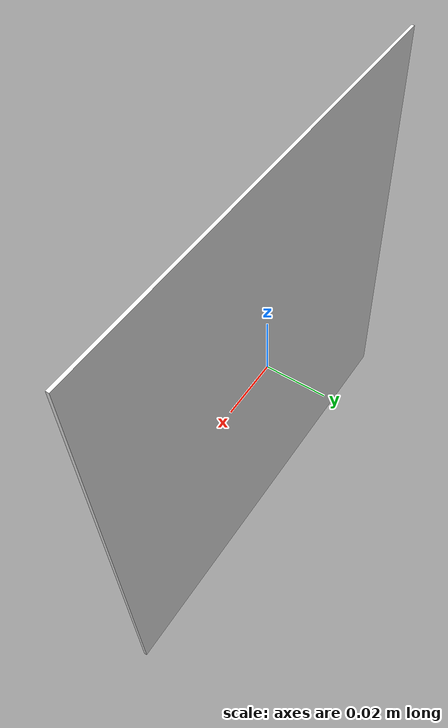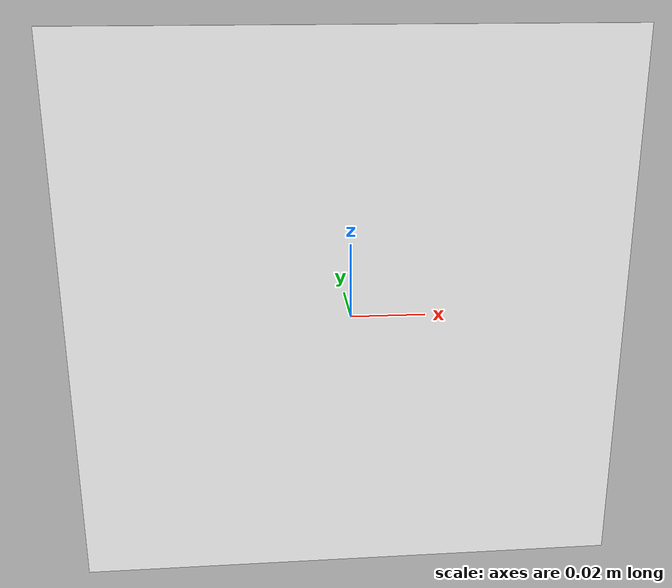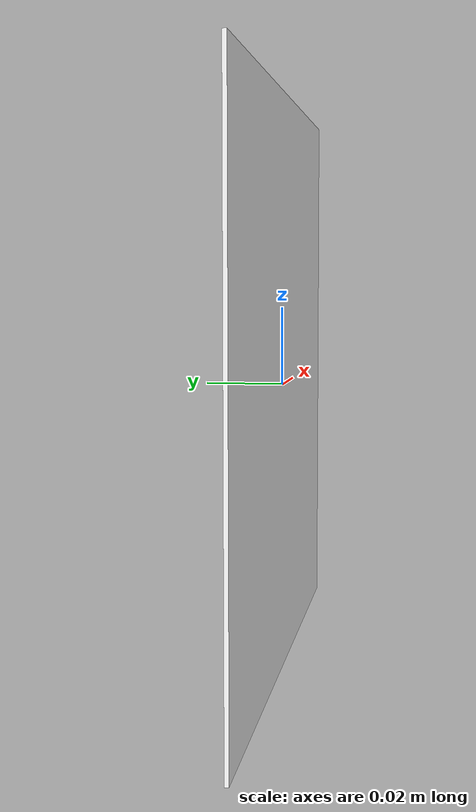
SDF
<?xml version="1.0"?>
<sdf version="1.8">
  <model name="aruco_marker">
    <static>true</static>
    <link name="marker_link">
      <pose>0 0 0 0 0 0</pose>
      <visual name="marker_visual">
        <pose>0 0 0 0 0 0</pose>
        <geometry>
          <box>
            <size>0.15 0.001 0.15</size>
          </box>
        </geometry>
        <material>
          <ambient>1 1 1 1</ambient>
          <diffuse>1 1 1 1</diffuse>
          <specular>0.1 0.1 0.1 1</specular>
          <pbr>
            <metal>
              <albedo_map>materials/textures/aruco_marker.png</albedo_map>
            </metal>
          </pbr>
        </material>
      </visual>
      <!-- Invisible collision box (thin) so camera can see through it -->
      <collision name="marker_collision">
        <pose>0 0 0 0 0 0</pose>
        <geometry>
          <box>
            <size>0.15 0.001 0.15</size>
          </box>
        </geometry>
      </collision>
    </link>
  </model>
</sdf>
